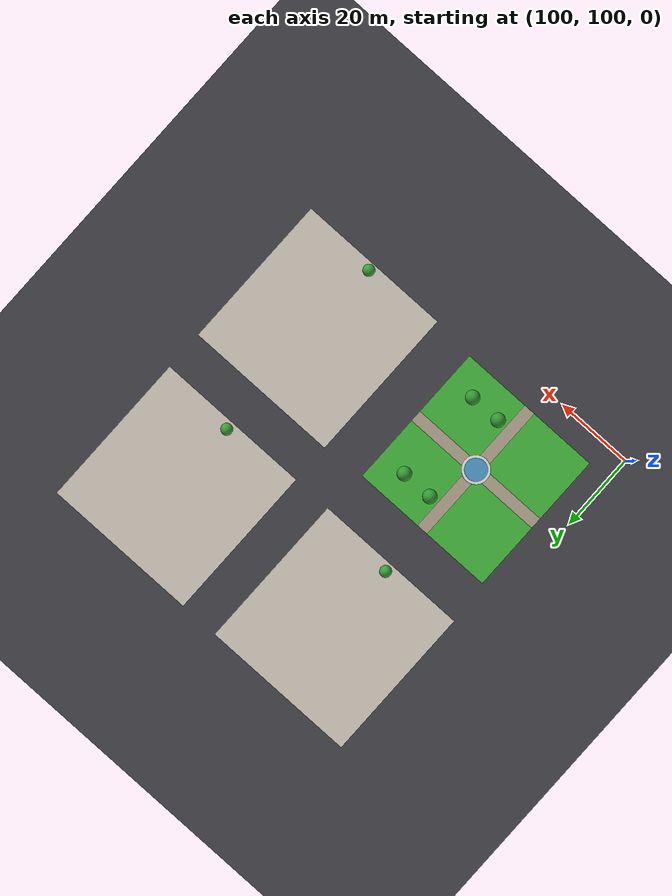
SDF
<sdf version="1.6">
 <world name="civiclens_indian_city">
  <model name="ground_plane">
   <static>true</static>
   <link name="link">
    <collision name="collision">
     <geometry><plane><normal>0 0 1</normal><size>350 350</size></plane></geometry>
    </collision>
    <visual name="asphalt">
     <geometry><plane><normal>0 0 1</normal><size>350 350</size></plane></geometry>
     <material>
      <ambient>0.22 0.22 0.24 1</ambient>
      <diffuse>0.25 0.25 0.27 1</diffuse>
      <specular>0.08 0.08 0.08 1</specular>
     </material>
    </visual>
   </link>
  </model>
  <model name="park_2_2">
   <static>true</static>
   <pose>125 125 0.09 0 0 0</pose>
   <link name="link">
    <visual name="grass">
     <geometry><box><size>38 38 0.02</size></box></geometry>
     <material><ambient>0.20 0.58 0.18 1</ambient><diffuse>0.25 0.68 0.22 1</diffuse></material>
    </visual>
    <visual name="path_horizontal">
     <geometry><box><size>38 3.0 0.03</size></box></geometry>
     <material><ambient>0.65 0.60 0.52 1</ambient></material>
    </visual>
    <visual name="path_vertical">
     <geometry><box><size>3.0 38 0.03</size></box></geometry>
     <material><ambient>0.65 0.60 0.52 1</ambient></material>
    </visual>
    <visual name="central_fountain_base">
     <geometry><cylinder><radius>3.5</radius><length>0.4</length></cylinder></geometry>
     <material><ambient>0.85 0.85 0.85 1</ambient></material>
    </visual>
    <visual name="central_fountain_water">
     <pose>0 0 0.25 0 0 0</pose>
     <geometry><cylinder><radius>2.8</radius><length>0.15</length></cylinder></geometry>
     <material><ambient>0.15 0.45 0.65 0.8</ambient><diffuse>0.2 0.55 0.75 0.8</diffuse></material>
    </visual>
   </link>
  </model>
  <model name="park_tree_15">
   <static>true</static>
   <pose>129 113 0.08 0 0 0</pose>
   <link name="link">
    <visual name="trunk">
     <pose>0 0 1.2 0 0 0</pose>
     <geometry><cylinder><radius>0.22</radius><length>2.4</length></cylinder></geometry>
     <material><ambient>0.35 0.20 0.08 1</ambient></material>
    </visual>
    <visual name="canopy">
     <pose>0 0 3.0 0 0 0</pose>
     <geometry><sphere><radius>1.8</radius></sphere></geometry>
     <material><ambient>0.15 0.52 0.15 1</ambient><diffuse>0.20 0.60 0.20 1</diffuse></material>
    </visual>
   </link>
  </model>
  <model name="park_tree_16">
   <static>true</static>
   <pose>129 137 0.08 0 0 0</pose>
   <link name="link">
    <visual name="trunk">
     <pose>0 0 1.2 0 0 0</pose>
     <geometry><cylinder><radius>0.22</radius><length>2.4</length></cylinder></geometry>
     <material><ambient>0.35 0.20 0.08 1</ambient></material>
    </visual>
    <visual name="canopy">
     <pose>0 0 3.0 0 0 0</pose>
     <geometry><sphere><radius>1.8</radius></sphere></geometry>
     <material><ambient>0.15 0.52 0.15 1</ambient><diffuse>0.20 0.60 0.20 1</diffuse></material>
    </visual>
   </link>
  </model>
  <model name="park_tree_17">
   <static>true</static>
   <pose>137 113 0.08 0 0 0</pose>
   <link name="link">
    <visual name="trunk">
     <pose>0 0 1.2 0 0 0</pose>
     <geometry><cylinder><radius>0.22</radius><length>2.4</length></cylinder></geometry>
     <material><ambient>0.35 0.20 0.08 1</ambient></material>
    </visual>
    <visual name="canopy">
     <pose>0 0 3.0 0 0 0</pose>
     <geometry><sphere><radius>1.8</radius></sphere></geometry>
     <material><ambient>0.15 0.52 0.15 1</ambient><diffuse>0.20 0.60 0.20 1</diffuse></material>
    </visual>
   </link>
  </model>
  <model name="park_tree_18">
   <static>true</static>
   <pose>137 137 0.08 0 0 0</pose>
   <link name="link">
    <visual name="trunk">
     <pose>0 0 1.2 0 0 0</pose>
     <geometry><cylinder><radius>0.22</radius><length>2.4</length></cylinder></geometry>
     <material><ambient>0.35 0.20 0.08 1</ambient></material>
    </visual>
    <visual name="canopy">
     <pose>0 0 3.0 0 0 0</pose>
     <geometry><sphere><radius>1.8</radius></sphere></geometry>
     <material><ambient>0.15 0.52 0.15 1</ambient><diffuse>0.20 0.60 0.20 1</diffuse></material>
    </visual>
   </link>
  </model>
  <model name="sidewalk_block_2_3">
   <static>true</static>
   <pose>175 125 0.04 0 0 0</pose>
   <link name="link">
    <collision name="col"><geometry><box><size>40 40 0.08</size></box></geometry></collision>
    <visual name="pavement">
     <geometry><box><size>40 40 0.08</size></box></geometry>
     <material>
      <ambient>0.72 0.70 0.65 1</ambient>
      <diffuse>0.78 0.75 0.70 1</diffuse>
      <specular>0.1 0.1 0.1 1</specular>
     </material>
    </visual>
   </link>
  </model>
  <model name="street_tree_19">
   <static>true</static>
   <pose>175 107 0.08 0 0 0</pose>
   <link name="link">
    <visual name="trunk">
     <pose>0 0 1.2 0 0 0</pose>
     <geometry><cylinder><radius>0.18</radius><length>2.4</length></cylinder></geometry>
     <material><ambient>0.35 0.20 0.08 1</ambient></material>
    </visual>
    <visual name="canopy">
     <pose>0 0 2.8 0 0 0</pose>
     <geometry><sphere><radius>1.5</radius></sphere></geometry>
     <material><ambient>0.18 0.55 0.18 1</ambient><diffuse>0.22 0.62 0.22 1</diffuse></material>
    </visual>
   </link>
  </model>
  <model name="sidewalk_block_3_2">
   <static>true</static>
   <pose>125 175 0.04 0 0 0</pose>
   <link name="link">
    <collision name="col"><geometry><box><size>40 40 0.08</size></box></geometry></collision>
    <visual name="pavement">
     <geometry><box><size>40 40 0.08</size></box></geometry>
     <material>
      <ambient>0.72 0.70 0.65 1</ambient>
      <diffuse>0.78 0.75 0.70 1</diffuse>
      <specular>0.1 0.1 0.1 1</specular>
     </material>
    </visual>
   </link>
  </model>
  <model name="street_tree_22">
   <static>true</static>
   <pose>125 157 0.08 0 0 0</pose>
   <link name="link">
    <visual name="trunk">
     <pose>0 0 1.2 0 0 0</pose>
     <geometry><cylinder><radius>0.18</radius><length>2.4</length></cylinder></geometry>
     <material><ambient>0.35 0.20 0.08 1</ambient></material>
    </visual>
    <visual name="canopy">
     <pose>0 0 2.8 0 0 0</pose>
     <geometry><sphere><radius>1.5</radius></sphere></geometry>
     <material><ambient>0.18 0.55 0.18 1</ambient><diffuse>0.22 0.62 0.22 1</diffuse></material>
    </visual>
   </link>
  </model>
  <model name="sidewalk_block_3_3">
   <static>true</static>
   <pose>175 175 0.04 0 0 0</pose>
   <link name="link">
    <collision name="col"><geometry><box><size>40 40 0.08</size></box></geometry></collision>
    <visual name="pavement">
     <geometry><box><size>40 40 0.08</size></box></geometry>
     <material>
      <ambient>0.72 0.70 0.65 1</ambient>
      <diffuse>0.78 0.75 0.70 1</diffuse>
      <specular>0.1 0.1 0.1 1</specular>
     </material>
    </visual>
   </link>
  </model>
  <model name="street_tree_23">
   <static>true</static>
   <pose>175 157 0.08 0 0 0</pose>
   <link name="link">
    <visual name="trunk">
     <pose>0 0 1.2 0 0 0</pose>
     <geometry><cylinder><radius>0.18</radius><length>2.4</length></cylinder></geometry>
     <material><ambient>0.35 0.20 0.08 1</ambient></material>
    </visual>
    <visual name="canopy">
     <pose>0 0 2.8 0 0 0</pose>
     <geometry><sphere><radius>1.5</radius></sphere></geometry>
     <material><ambient>0.18 0.55 0.18 1</ambient><diffuse>0.22 0.62 0.22 1</diffuse></material>
    </visual>
   </link>
  </model>
 </world>
</sdf>
